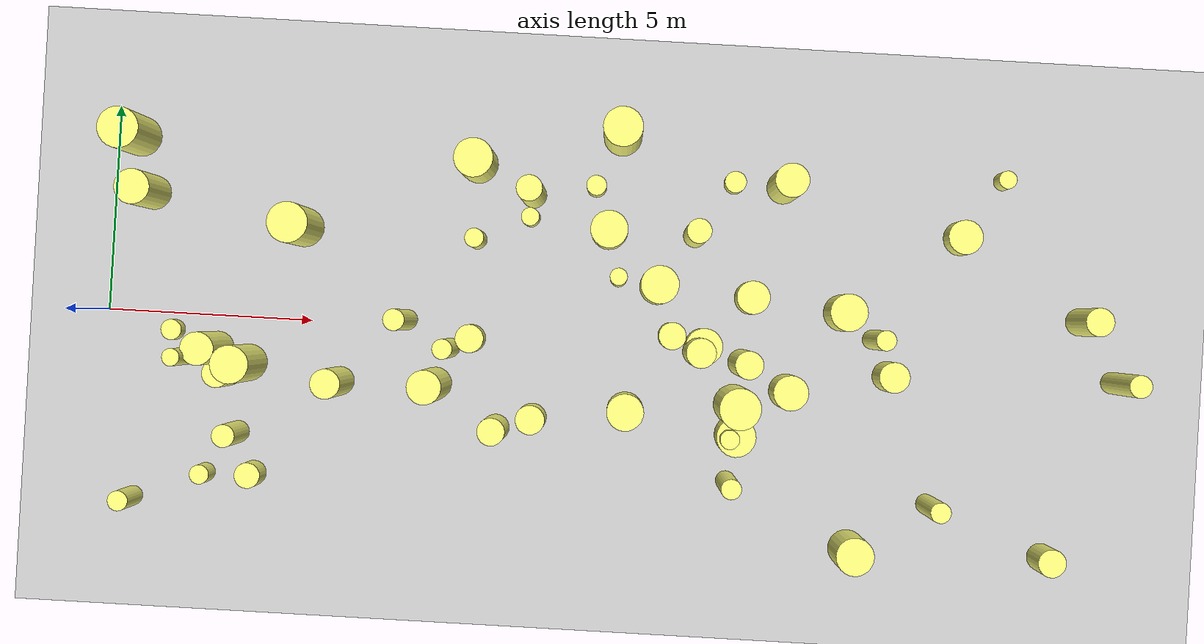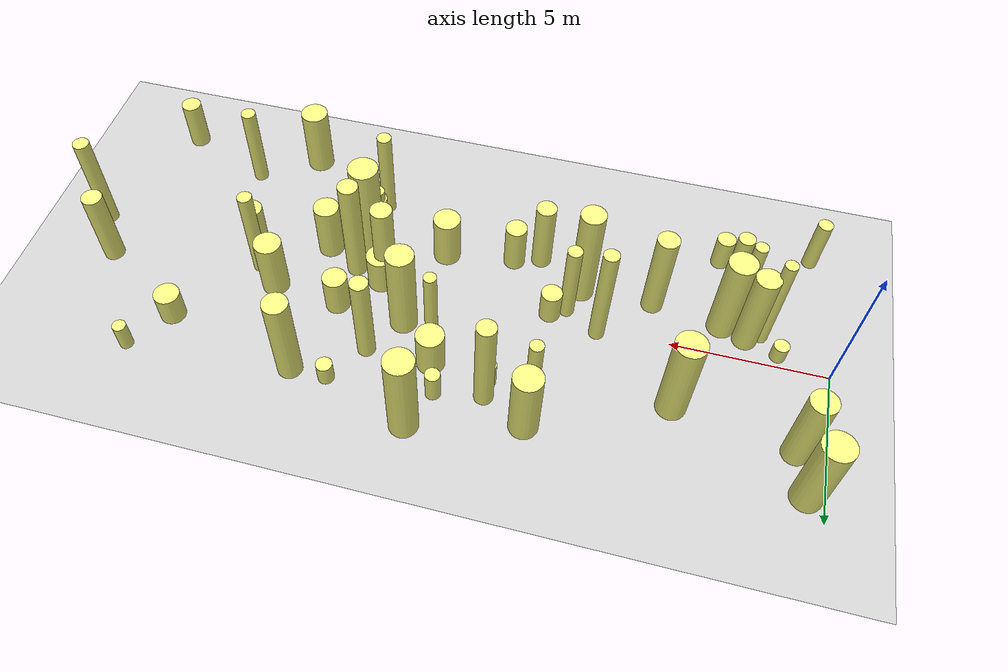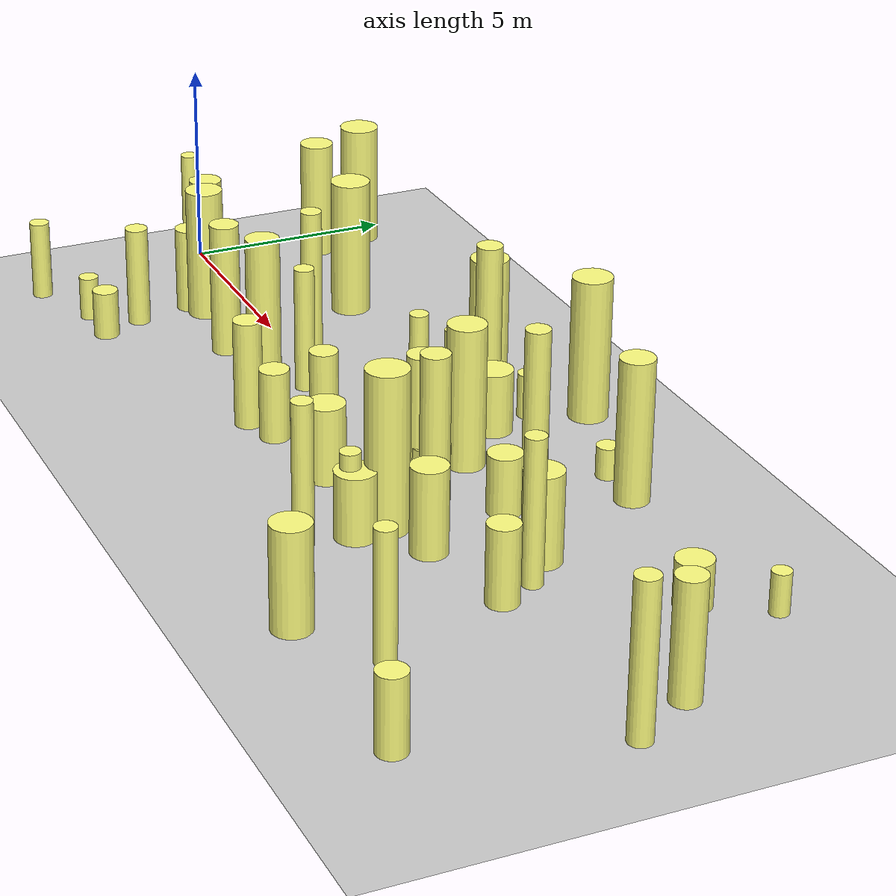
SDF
<sdf version="1.4">
 <world name="default">
  <include><uri>model://ground_plane</uri></include>
  <include><uri>model://sun</uri></include>
  <model name="forest">
   <static>true</static>
   <link name="cylinder2">
    <pose>12.17355871511667 2.617348784406312 0.7695251671588164 0 0 0</pose>
    <visual name="visual">
     <geometry>
      <cylinder><radius>0.45518470965374425</radius><length>1.5390503343176327</length></cylinder>
     </geometry>
     <material>
      <ambient>0.6 0.6 0.6 1</ambient>
      <diffuse>1 1 0.5 1</diffuse>
      <specular>0 0 0</specular>
      <emissive>0 0 0 1</emissive>
     </material>
    </visual>
    <collision name="collision">
     <geometry>
      <cylinder><radius>0.45518470965374425</radius><length>1.5390503343176327</length></cylinder>
     </geometry>
     <max_contacts>0</max_contacts>
    </collision>
   </link>
   <link name="cylinder4">
    <pose>0.5451021397248006 4.287327093307088 1.5533532316845653 0 0 0</pose>
    <visual name="visual">
     <geometry>
      <cylinder><radius>0.490695693746299</radius><length>3.1067064633691306</length></cylinder>
     </geometry>
     <material>
      <ambient>0.6 0.6 0.6 1</ambient>
      <diffuse>1 1 0.5 1</diffuse>
      <specular>0 0 0</specular>
      <emissive>0 0 0 1</emissive>
     </material>
    </visual>
    <collision name="collision">
     <geometry>
      <cylinder><radius>0.490695693746299</radius><length>3.1067064633691306</length></cylinder>
     </geometry>
     <max_contacts>0</max_contacts>
    </collision>
   </link>
   <link name="cylinder5">
    <pose>16.382690969800457 3.9296498198441725 1.7116452125746195 0 0 0</pose>
    <visual name="visual">
     <geometry>
      <cylinder><radius>0.40242538897291935</radius><length>3.423290425149239</length></cylinder>
     </geometry>
     <material>
      <ambient>0.6 0.6 0.6 1</ambient>
      <diffuse>1 1 0.5 1</diffuse>
      <specular>0 0 0</specular>
      <emissive>0 0 0 1</emissive>
     </material>
    </visual>
    <collision name="collision">
     <geometry>
      <cylinder><radius>0.40242538897291935</radius><length>3.423290425149239</length></cylinder>
     </geometry>
     <max_contacts>0</max_contacts>
    </collision>
   </link>
   <link name="cylinder6">
    <pose>0.8219950260331892 -4.550754108827136 0.9829498164001 0 0 0</pose>
    <visual name="visual">
     <geometry><cylinder><radius>0.2426356322146021</radius><length>1.9658996328002</length></cylinder></geometry>
     <material>
      <ambient>0.6 0.6 0.6 1</ambient>
      <diffuse>1 1 0.5 1</diffuse>
      <specular>0 0 0</specular>
      <emissive>0 0 0 1</emissive>
     </material>
    </visual>
    <collision name="collision">
     <geometry><cylinder><radius>0.2426356322146021</radius><length>1.9658996328002</length></cylinder></geometry>
     <max_contacts>0</max_contacts>
    </collision>
   </link>
   <link name="cylinder8">
    <pose>14.62403911125039 -0.0837147885713696 0.6771761001458225 0 0 0</pose>
    <visual name="visual">
     <geometry>
      <cylinder><radius>0.4475435085670516</radius><length>1.354352200291645</length></cylinder>
     </geometry>
     <material>
      <ambient>0.6 0.6 0.6 1</ambient>
      <diffuse>1 1 0.5 1</diffuse>
      <specular>0 0 0</specular>
      <emissive>0 0 0 1</emissive>
     </material>
    </visual>
    <collision name="collision">
     <geometry>
      <cylinder><radius>0.4475435085670516</radius><length>1.354352200291645</length></cylinder>
     </geometry>
     <max_contacts>0</max_contacts>
    </collision>
   </link>
   <link name="cylinder9">
    <pose>15.456999087174616 -1.4610693759416282 1.895710020783813 0 0 0</pose>
    <visual name="visual">
     <geometry>
      <cylinder><radius>0.48978377937480916</radius><length>3.791420041567626</length></cylinder>
     </geometry>
     <material>
      <ambient>0.6 0.6 0.6 1</ambient>
      <diffuse>1 1 0.5 1</diffuse>
      <specular>0 0 0</specular>
      <emissive>0 0 0 1</emissive>
     </material>
    </visual>
    <collision name="collision">
     <geometry>
      <cylinder><radius>0.48978377937480916</radius><length>3.791420041567626</length></cylinder>
     </geometry>
     <max_contacts>0</max_contacts>
    </collision>
   </link>
   <link name="cylinder11">
    <pose>8.878919479202033 4.079860358370427 1.3583442511263264 0 0 0</pose>
    <visual name="visual">
     <geometry>
      <cylinder><radius>0.4692062023084717</radius><length>2.716688502252653</length></cylinder>
     </geometry>
     <material>
      <ambient>0.6 0.6 0.6 1</ambient>
      <diffuse>1 1 0.5 1</diffuse>
      <specular>0 0 0</specular>
      <emissive>0 0 0 1</emissive>
     </material>
    </visual>
    <collision name="collision">
     <geometry>
      <cylinder><radius>0.4692062023084717</radius><length>2.716688502252653</length></cylinder>
     </geometry>
     <max_contacts>0</max_contacts>
    </collision>
   </link>
   <link name="cylinder12">
    <pose>23.857496988495512 1.0411982424140138 1.3827535337328685 0 0 0</pose>
    <visual name="visual">
     <geometry>
      <cylinder><radius>0.3394898045034613</radius><length>2.765507067465737</length></cylinder>
     </geometry>
     <material>
      <ambient>0.6 0.6 0.6 1</ambient>
      <diffuse>1 1 0.5 1</diffuse>
      <specular>0 0 0</specular>
      <emissive>0 0 0 1</emissive>
     </material>
    </visual>
    <collision name="collision">
     <geometry>
      <cylinder><radius>0.3394898045034613</radius><length>2.765507067465737</length></cylinder>
     </geometry>
     <max_contacts>0</max_contacts>
    </collision>
   </link>
   <link name="cylinder15">
    <pose>20.32863319259627 -3.6418209097069587 1.5089677672920634 0 0 0</pose>
    <visual name="visual">
     <geometry>
      <cylinder><radius>0.24420239186949372</radius><length>3.0179355345841268</length></cylinder>
     </geometry>
     <material>
      <ambient>0.6 0.6 0.6 1</ambient>
      <diffuse>1 1 0.5 1</diffuse>
      <specular>0 0 0</specular>
      <emissive>0 0 0 1</emissive>
     </material>
    </visual>
    <collision name="collision">
     <geometry>
      <cylinder><radius>0.24420239186949372</radius><length>3.0179355345841268</length></cylinder>
     </geometry>
     <max_contacts>0</max_contacts>
    </collision>
   </link>
   <link name="cylinder17">
    <pose>1.6294070108838419 -0.41041868526114555 0.3100170222696396 0 0 0</pose>
    <visual name="visual">
     <geometry>
      <cylinder><radius>0.25122345132233415</radius><length>0.6200340445392792</length></cylinder>
     </geometry>
     <material>
      <ambient>0.6 0.6 0.6 1</ambient>
      <diffuse>1 1 0.5 1</diffuse>
      <specular>0 0 0</specular>
      <emissive>0 0 0 1</emissive>
     </material>
    </visual>
    <collision name="collision">
     <geometry>
      <cylinder><radius>0.25122345132233415</radius><length>0.6200340445392792</length></cylinder>
     </geometry>
     <max_contacts>0</max_contacts>
    </collision>
   </link>
   <link name="cylinder18">
    <pose>18.440453964464126 -4.842324224014992 1.208034778838587 0 0 0</pose>
    <visual name="visual">
     <geometry>
      <cylinder><radius>0.4564822820893654</radius><length>2.416069557677174</length></cylinder>
     </geometry>
     <material>
      <ambient>0.6 0.6 0.6 1</ambient>
      <diffuse>1 1 0.5 1</diffuse>
      <specular>0 0 0</specular>
      <emissive>0 0 0 1</emissive>
     </material>
    </visual>
    <collision name="collision">
     <geometry>
      <cylinder><radius>0.4564822820893654</radius><length>2.416069557677174</length></cylinder>
     </geometry>
     <max_contacts>0</max_contacts>
    </collision>
   </link>
   <link name="cylinder23">
    <pose>18.78206764260443 0.32193979078497925 1.7154093065790716 0 0 0</pose>
    <visual name="visual">
     <geometry>
      <cylinder><radius>0.2384730306338957</radius><length>3.4308186131581433</length></cylinder>
     </geometry>
     <material>
      <ambient>0.6 0.6 0.6 1</ambient>
      <diffuse>1 1 0.5 1</diffuse>
      <specular>0 0 0</specular>
      <emissive>0 0 0 1</emissive>
     </material>
    </visual>
    <collision name="collision">
     <geometry>
      <cylinder><radius>0.2384730306338957</radius><length>3.4308186131581433</length></cylinder>
     </geometry>
     <max_contacts>0</max_contacts>
    </collision>
   </link>
   <link name="cylinder25">
    <pose>15.18038209791004 3.9632517767507522 0.3795768220333743 0 0 0</pose>
    <visual name="visual">
     <geometry>
      <cylinder><radius>0.2628267390274407</radius><length>0.7591536440667486</length></cylinder>
     </geometry>
     <material>
      <ambient>0.6 0.6 0.6 1</ambient>
      <diffuse>1 1 0.5 1</diffuse>
      <specular>0 0 0</specular>
      <emissive>0 0 0 1</emissive>
     </material>
    </visual>
    <collision name="collision">
     <geometry>
      <cylinder><radius>0.2628267390274407</radius><length>0.7591536440667486</length></cylinder>
     </geometry>
     <max_contacts>0</max_contacts>
    </collision>
   </link>
   <link name="cylinder30">
    <pose>12.466454563471714 1.4634949548378549 1.4268033545715695 0 0 0</pose>
    <visual name="visual">
     <geometry>
      <cylinder><radius>0.20881695404905304</radius><length>2.853606709143139</length></cylinder>
     </geometry>
     <material>
      <ambient>0.6 0.6 0.6 1</ambient>
      <diffuse>1 1 0.5 1</diffuse>
      <specular>0 0 0</specular>
      <emissive>0 0 0 1</emissive>
     </material>
    </visual>
    <collision name="collision">
     <geometry>
      <cylinder><radius>0.20881695404905304</radius><length>2.853606709143139</length></cylinder>
     </geometry>
     <max_contacts>0</max_contacts>
    </collision>
   </link>
   <link name="cylinder31">
    <pose>15.73953664509056 1.1715371120125715 0.7075776560475322 0 0 0</pose>
    <visual name="visual">
     <geometry>
      <cylinder><radius>0.4041041723390336</radius><length>1.4151553120950644</length></cylinder>
     </geometry>
     <material>
      <ambient>0.6 0.6 0.6 1</ambient>
      <diffuse>1 1 0.5 1</diffuse>
      <specular>0 0 0</specular>
      <emissive>0 0 0 1</emissive>
     </material>
    </visual>
    <collision name="collision">
     <geometry>
      <cylinder><radius>0.4041041723390336</radius><length>1.4151553120950644</length></cylinder>
     </geometry>
     <max_contacts>0</max_contacts>
    </collision>
   </link>
   <link name="cylinder33">
    <pose>19.200297235555233 -0.5566598012490411 0.9218042193405969 0 0 0</pose>
    <visual name="visual">
     <geometry>
      <cylinder><radius>0.3691931991757576</radius><length>1.8436084386811937</length></cylinder>
     </geometry>
     <material>
      <ambient>0.6 0.6 0.6 1</ambient>
      <diffuse>1 1 0.5 1</diffuse>
      <specular>0 0 0</specular>
      <emissive>0 0 0 1</emissive>
     </material>
    </visual>
    <collision name="collision">
     <geometry>
      <cylinder><radius>0.3691931991757576</radius><length>1.8436084386811937</length></cylinder>
     </geometry>
     <max_contacts>0</max_contacts>
    </collision>
   </link>
   <link name="cylinder34">
    <pose>24.732433368093957 -0.4078893535844852 1.7801295612060917 0 0 0</pose>
    <visual name="visual">
     <geometry>
      <cylinder><radius>0.2683265457778024</radius><length>3.5602591224121833</length></cylinder>
     </geometry>
     <material>
      <ambient>0.6 0.6 0.6 1</ambient>
      <diffuse>1 1 0.5 1</diffuse>
      <specular>0 0 0</specular>
      <emissive>0 0 0 1</emissive>
     </material>
    </visual>
    <collision name="collision">
     <geometry>
      <cylinder><radius>0.2683265457778024</radius><length>3.5602591224121833</length></cylinder>
     </geometry>
     <max_contacts>0</max_contacts>
    </collision>
   </link>
   <link name="cylinder35">
    <pose>2.2000767860501824 -1.0098003690205126 1.8597760949323536 0 0 0</pose>
    <visual name="visual">
     <geometry>
      <cylinder><radius>0.20629073970940587</radius><length>3.7195521898647073</length></cylinder>
     </geometry>
     <material>
      <ambient>0.6 0.6 0.6 1</ambient>
      <diffuse>1 1 0.5 1</diffuse>
      <specular>0 0 0</specular>
      <emissive>0 0 0 1</emissive>
     </material>
    </visual>
    <collision name="collision">
     <geometry>
      <cylinder><radius>0.20629073970940587</radius><length>3.7195521898647073</length></cylinder>
     </geometry>
     <max_contacts>0</max_contacts>
    </collision>
   </link>
   <link name="cylinder37">
    <pose>3.3268651791632635 -2.832557597410086 1.2444173037912731 0 0 0</pose>
    <visual name="visual">
     <geometry>
      <cylinder><radius>0.27344529421121677</radius><length>2.4888346075825463</length></cylinder>
     </geometry>
     <material>
      <ambient>0.6 0.6 0.6 1</ambient>
      <diffuse>1 1 0.5 1</diffuse>
      <specular>0 0 0</specular>
      <emissive>0 0 0 1</emissive>
     </material>
    </visual>
    <collision name="collision">
     <geometry>
      <cylinder><radius>0.27344529421121677</radius><length>2.4888346075825463</length></cylinder>
     </geometry>
     <max_contacts>0</max_contacts>
    </collision>
   </link>
   <link name="cylinder38">
    <pose>8.944952612057648 2.2216570837131364 0.8179286366309981 0 0 0</pose>
    <visual name="visual">
     <geometry>
      <cylinder><radius>0.23313235281679032</radius><length>1.6358572732619963</length></cylinder>
     </geometry>
     <material>
      <ambient>0.6 0.6 0.6 1</ambient>
      <diffuse>1 1 0.5 1</diffuse>
      <specular>0 0 0</specular>
      <emissive>0 0 0 1</emissive>
     </material>
    </visual>
    <collision name="collision">
     <geometry>
      <cylinder><radius>0.23313235281679032</radius><length>1.6358572732619963</length></cylinder>
     </geometry>
     <max_contacts>0</max_contacts>
    </collision>
   </link>
   <link name="cylinder39">
    <pose>15.506929338213197 -2.2096749711047825 0.7948044124810728 0 0 0</pose>
    <visual name="visual">
     <geometry>
      <cylinder><radius>0.4772542039277148</radius><length>1.5896088249621456</length></cylinder>
     </geometry>
     <material>
      <ambient>0.6 0.6 0.6 1</ambient>
      <diffuse>1 1 0.5 1</diffuse>
      <specular>0 0 0</specular>
      <emissive>0 0 0 1</emissive>
     </material>
    </visual>
    <collision name="collision">
     <geometry>
      <cylinder><radius>0.4772542039277148</radius><length>1.5896088249621456</length></cylinder>
     </geometry>
     <max_contacts>0</max_contacts>
    </collision>
   </link>
   <link name="cylinder41">
    <pose>14.489343630699338 -0.21784645105941003 1.731855769582506 0 0 0</pose>
    <visual name="visual">
     <geometry>
      <cylinder><radius>0.3526989026732716</radius><length>3.463711539165012</length></cylinder>
     </geometry>
     <material>
      <ambient>0.6 0.6 0.6 1</ambient>
      <diffuse>1 1 0.5 1</diffuse>
      <specular>0 0 0</specular>
      <emissive>0 0 0 1</emissive>
     </material>
    </visual>
    <collision name="collision">
     <geometry>
      <cylinder><radius>0.3526989026732716</radius><length>3.463711539165012</length></cylinder>
     </geometry>
     <max_contacts>0</max_contacts>
    </collision>
   </link>
   <link name="cylinder42">
    <pose>15.596232416822524 -0.42684086194105664 1.9987643856446065 0 0 0</pose>
    <visual name="visual">
     <geometry>
      <cylinder><radius>0.33143724376177514</radius><length>3.997528771289213</length></cylinder>
     </geometry>
     <material>
      <ambient>0.6 0.6 0.6 1</ambient>
      <diffuse>1 1 0.5 1</diffuse>
      <specular>0 0 0</specular>
      <emissive>0 0 0 1</emissive>
     </material>
    </visual>
    <collision name="collision">
     <geometry>
      <cylinder><radius>0.33143724376177514</radius><length>3.997528771289213</length></cylinder>
     </geometry>
     <max_contacts>0</max_contacts>
    </collision>
   </link>
   <link name="cylinder46">
    <pose>13.439167088054063 1.3241548024242134 1.7184270815577272 0 0 0</pose>
    <visual name="visual">
     <geometry>
      <cylinder><radius>0.4499449676625704</radius><length>3.4368541631154543</length></cylinder>
     </geometry>
     <material>
      <ambient>0.6 0.6 0.6 1</ambient>
      <diffuse>1 1 0.5 1</diffuse>
      <specular>0 0 0</specular>
      <emissive>0 0 0 1</emissive>
     </material>
    </visual>
    <collision name="collision">
     <geometry>
      <cylinder><radius>0.4499449676625704</radius><length>3.4368541631154543</length></cylinder>
     </geometry>
     <max_contacts>0</max_contacts>
    </collision>
   </link>
   <link name="cylinder49">
    <pose>20.81168345473008 2.928617343516886 0.54699325148576 0 0 0</pose>
    <visual name="visual">
     <geometry>
      <cylinder><radius>0.41962012148468575</radius><length>1.09398650297152</length></cylinder>
     </geometry>
     <material>
      <ambient>0.6 0.6 0.6 1</ambient>
      <diffuse>1 1 0.5 1</diffuse>
      <specular>0 0 0</specular>
      <emissive>0 0 0 1</emissive>
     </material>
    </visual>
    <collision name="collision">
     <geometry>
      <cylinder><radius>0.41962012148468575</radius><length>1.09398650297152</length></cylinder>
     </geometry>
     <max_contacts>0</max_contacts>
    </collision>
   </link>
   <link name="cylinder50">
    <pose>13.836993050028077 0.13474181616119552 0.8172512902104683 0 0 0</pose>
    <visual name="visual">
     <geometry>
      <cylinder><radius>0.330910202041312</radius><length>1.6345025804209365</length></cylinder>
     </geometry>
     <material>
      <ambient>0.6 0.6 0.6 1</ambient>
      <diffuse>1 1 0.5 1</diffuse>
      <specular>0 0 0</specular>
      <emissive>0 0 0 1</emissive>
     </material>
    </visual>
    <collision name="collision">
     <geometry>
      <cylinder><radius>0.330910202041312</radius><length>1.6345025804209365</length></cylinder>
     </geometry>
     <max_contacts>0</max_contacts>
    </collision>
   </link>
   <link name="cylinder52">
    <pose>2.7045159463375086 -0.787005885120589 1.6008697981100701 0 0 0</pose>
    <visual name="visual">
     <geometry>
      <cylinder><radius>0.39509654069503153</radius><length>3.2017395962201403</length></cylinder>
     </geometry>
     <material>
      <ambient>0.6 0.6 0.6 1</ambient>
      <diffuse>1 1 0.5 1</diffuse>
      <specular>0 0 0</specular>
      <emissive>0 0 0 1</emissive>
     </material>
    </visual>
    <collision name="collision">
     <geometry>
      <cylinder><radius>0.39509654069503153</radius><length>3.2017395962201403</length></cylinder>
     </geometry>
     <max_contacts>0</max_contacts>
    </collision>
   </link>
   <link name="cylinder53">
    <pose>0.927405932077459 2.926455855577661 1.492132570759678 0 0 0</pose>
    <visual name="visual">
     <geometry>
      <cylinder><radius>0.4193248782191068</radius><length>2.984265141519356</length></cylinder>
     </geometry>
     <material>
      <ambient>0.6 0.6 0.6 1</ambient>
      <diffuse>1 1 0.5 1</diffuse>
      <specular>0 0 0</specular>
      <emissive>0 0 0 1</emissive>
     </material>
    </visual>
    <collision name="collision">
     <geometry>
      <cylinder><radius>0.4193248782191068</radius><length>2.984265141519356</length></cylinder>
     </geometry>
     <max_contacts>0</max_contacts>
    </collision>
   </link>
   <link name="cylinder55">
    <pose>12.804423549938008 -1.7562708476605726 0.921033869204892 0 0 0</pose>
    <visual name="visual">
     <geometry>
      <cylinder><radius>0.4482198343066287</radius><length>1.842067738409784</length></cylinder>
     </geometry>
     <material>
      <ambient>0.6 0.6 0.6 1</ambient>
      <diffuse>1 1 0.5 1</diffuse>
      <specular>0 0 0</specular>
      <emissive>0 0 0 1</emissive>
     </material>
    </visual>
    <collision name="collision">
     <geometry>
      <cylinder><radius>0.4482198343066287</radius><length>1.842067738409784</length></cylinder>
     </geometry>
     <max_contacts>0</max_contacts>
    </collision>
   </link>
   <link name="cylinder57">
    <pose>3.4896654946446297 -1.115549225749625 1.6420080818517513 0 0 0</pose>
    <visual name="visual">
     <geometry>
      <cylinder><radius>0.4537127796081549</radius><length>3.2840161637035026</length></cylinder>
     </geometry>
     <material>
      <ambient>0.6 0.6 0.6 1</ambient>
      <diffuse>1 1 0.5 1</diffuse>
      <specular>0 0 0</specular>
      <emissive>0 0 0 1</emissive>
     </material>
    </visual>
    <collision name="collision">
     <geometry>
      <cylinder><radius>0.4537127796081549</radius><length>3.2840161637035026</length></cylinder>
     </geometry>
     <max_contacts>0</max_contacts>
    </collision>
   </link>
   <link name="cylinder60">
    <pose>10.276058038939958 3.386741249278746 1.8502091323024195 0 0 0</pose>
    <visual name="visual">
     <geometry><cylinder><radius>0.308947790154439</radius><length>3.700418264604839</length></cylinder></geometry>
     <material>
      <ambient>0.6 0.6 0.6 1</ambient>
      <diffuse>1 1 0.5 1</diffuse>
      <specular>0 0 0</specular>
      <emissive>0 0 0 1</emissive>
     </material>
    </visual>
    <collision name="collision">
     <geometry><cylinder><radius>0.308947790154439</radius><length>3.700418264604839</length></cylinder></geometry>
     <max_contacts>0</max_contacts>
    </collision>
   </link>
   <link name="cylinder62">
    <pose>7.3290191008465655 0.15591134739980284 1.9796183557118858 0 0 0</pose>
    <visual name="visual">
     <geometry>
      <cylinder><radius>0.2520362077839969</radius><length>3.9592367114237716</length></cylinder>
     </geometry>
     <material>
      <ambient>0.6 0.6 0.6 1</ambient>
      <diffuse>1 1 0.5 1</diffuse>
      <specular>0 0 0</specular>
      <emissive>0 0 0 1</emissive>
     </material>
    </visual>
    <collision name="collision">
     <geometry>
      <cylinder><radius>0.2520362077839969</radius><length>3.9592367114237716</length></cylinder>
     </geometry>
     <max_contacts>0</max_contacts>
    </collision>
   </link>
   <link name="cylinder63">
    <pose>11.805849253504604 3.6740827512813663 0.5412694871013315 0 0 0</pose>
    <visual name="visual">
     <geometry>
      <cylinder><radius>0.24532652148197925</radius><length>1.082538974202663</length></cylinder>
     </geometry>
     <material>
      <ambient>0.6 0.6 0.6 1</ambient>
      <diffuse>1 1 0.5 1</diffuse>
      <specular>0 0 0</specular>
      <emissive>0 0 0 1</emissive>
     </material>
    </visual>
    <collision name="collision">
     <geometry>
      <cylinder><radius>0.24532652148197925</radius><length>1.082538974202663</length></cylinder>
     </geometry>
     <max_contacts>0</max_contacts>
    </collision>
   </link>
   <link name="cylinder64">
    <pose>15.33967509791475 -2.2590286480247466 0.9836531245159008 0 0 0</pose>
    <visual name="visual">
     <geometry>
      <cylinder><radius>0.2349544484722807</radius><length>1.9673062490318016</length></cylinder>
     </geometry>
     <material>
      <ambient>0.6 0.6 0.6 1</ambient>
      <diffuse>1 1 0.5 1</diffuse>
      <specular>0 0 0</specular>
      <emissive>0 0 0 1</emissive>
     </material>
    </visual>
    <collision name="collision">
     <geometry>
      <cylinder><radius>0.2349544484722807</radius><length>1.9673062490318016</length></cylinder>
     </geometry>
     <max_contacts>0</max_contacts>
    </collision>
   </link>
   <link name="cylinder67">
    <pose>12.374200654205367 4.950567793063341 1.7494851448672644 0 0 0</pose>
    <visual name="visual">
     <geometry>
      <cylinder><radius>0.4720444157505522</radius><length>3.4989702897345287</length></cylinder>
     </geometry>
     <material>
      <ambient>0.6 0.6 0.6 1</ambient>
      <diffuse>1 1 0.5 1</diffuse>
      <specular>0 0 0</specular>
      <emissive>0 0 0 1</emissive>
     </material>
    </visual>
    <collision name="collision">
     <geometry>
      <cylinder><radius>0.4720444157505522</radius><length>3.4989702897345287</length></cylinder>
     </geometry>
     <max_contacts>0</max_contacts>
    </collision>
   </link>
   <link name="cylinder70">
    <pose>14.285695051369999 2.6257159518421354 1.7179923736178238 0 0 0</pose>
    <visual name="visual">
     <geometry>
      <cylinder><radius>0.2931016993940348</radius><length>3.4359847472356475</length></cylinder>
     </geometry>
     <material>
      <ambient>0.6 0.6 0.6 1</ambient>
      <diffuse>1 1 0.5 1</diffuse>
      <specular>0 0 0</specular>
      <emissive>0 0 0 1</emissive>
     </material>
    </visual>
    <collision name="collision">
     <geometry>
      <cylinder><radius>0.2931016993940348</radius><length>3.4359847472356475</length></cylinder>
     </geometry>
     <max_contacts>0</max_contacts>
    </collision>
   </link>
   <link name="cylinder71">
    <pose>8.102474956606308 -1.3725759264189632 1.914699165471288 0 0 0</pose>
    <visual name="visual">
     <geometry>
      <cylinder><radius>0.40486415962533734</radius><length>3.829398330942576</length></cylinder>
     </geometry>
     <material>
      <ambient>0.6 0.6 0.6 1</ambient>
      <diffuse>1 1 0.5 1</diffuse>
      <specular>0 0 0</specular>
      <emissive>0 0 0 1</emissive>
     </material>
    </visual>
    <collision name="collision">
     <geometry>
      <cylinder><radius>0.40486415962533734</radius><length>3.829398330942576</length></cylinder>
     </geometry>
     <max_contacts>0</max_contacts>
    </collision>
   </link>
   <link name="cylinder73">
    <pose>17.996794814463108 0.9357022721209054 1.0757930091415022 0 0 0</pose>
    <visual name="visual">
     <geometry>
      <cylinder><radius>0.450443257757482</radius><length>2.1515860182830044</length></cylinder>
     </geometry>
     <material>
      <ambient>0.6 0.6 0.6 1</ambient>
      <diffuse>1 1 0.5 1</diffuse>
      <specular>0 0 0</specular>
      <emissive>0 0 0 1</emissive>
     </material>
    </visual>
    <collision name="collision">
     <geometry>
      <cylinder><radius>0.450443257757482</radius><length>2.1515860182830044</length></cylinder>
     </geometry>
     <max_contacts>0</max_contacts>
    </collision>
   </link>
   <link name="cylinder74">
    <pose>8.421307360547345 -0.4742759358230506 1.5261590711259467 0 0 0</pose>
    <visual name="visual">
     <geometry>
      <cylinder><radius>0.23880693193115116</radius><length>3.0523181422518935</length></cylinder>
     </geometry>
     <material>
      <ambient>0.6 0.6 0.6 1</ambient>
      <diffuse>1 1 0.5 1</diffuse>
      <specular>0 0 0</specular>
      <emissive>0 0 0 1</emissive>
     </material>
    </visual>
    <collision name="collision">
     <geometry>
      <cylinder><radius>0.23880693193115116</radius><length>3.0523181422518935</length></cylinder>
     </geometry>
     <max_contacts>0</max_contacts>
    </collision>
   </link>
   <link name="cylinder75">
    <pose>10.238442254037011 2.8288405427803287 0.48468426745013254 0 0 0</pose>
    <visual name="visual">
     <geometry>
      <cylinder><radius>0.22138871043756053</radius><length>0.9693685349002651</length></cylinder>
     </geometry>
     <material>
      <ambient>0.6 0.6 0.6 1</ambient>
      <diffuse>1 1 0.5 1</diffuse>
      <specular>0 0 0</specular>
      <emissive>0 0 0 1</emissive>
     </material>
    </visual>
    <collision name="collision">
     <geometry>
      <cylinder><radius>0.22138871043756053</radius><length>0.9693685349002651</length></cylinder>
     </geometry>
     <max_contacts>0</max_contacts>
    </collision>
   </link>
   <link name="cylinder76">
    <pose>16.728705671362768 -1.0626794870439502 1.0294470993203353 0 0 0</pose>
    <visual name="visual">
     <geometry>
      <cylinder><radius>0.42319690717613967</radius><length>2.0588941986406706</length></cylinder>
     </geometry>
     <material>
      <ambient>0.6 0.6 0.6 1</ambient>
      <diffuse>1 1 0.5 1</diffuse>
      <specular>0 0 0</specular>
      <emissive>0 0 0 1</emissive>
     </material>
    </visual>
    <collision name="collision">
     <geometry>
      <cylinder><radius>0.42319690717613967</radius><length>2.0588941986406706</length></cylinder>
     </geometry>
     <max_contacts>0</max_contacts>
    </collision>
   </link>
   <link name="cylinder78">
    <pose>3.760864862382885 -3.825950771792148 0.596070022942107 0 0 0</pose>
    <visual name="visual">
     <geometry>
      <cylinder><radius>0.3098569331466577</radius><length>1.192140045884214</length></cylinder>
     </geometry>
     <material>
      <ambient>0.6 0.6 0.6 1</ambient>
      <diffuse>1 1 0.5 1</diffuse>
      <specular>0 0 0</specular>
      <emissive>0 0 0 1</emissive>
     </material>
    </visual>
    <collision name="collision">
     <geometry>
      <cylinder><radius>0.3098569331466577</radius><length>1.192140045884214</length></cylinder>
     </geometry>
     <max_contacts>0</max_contacts>
    </collision>
   </link>
   <link name="cylinder80">
    <pose>8.934186380904912 -0.2113892503787964 0.5618014994605595 0 0 0</pose>
    <visual name="visual">
     <geometry>
      <cylinder><radius>0.3452127710942861</radius><length>1.123602998921119</length></cylinder>
     </geometry>
     <material>
      <ambient>0.6 0.6 0.6 1</ambient>
      <diffuse>1 1 0.5 1</diffuse>
      <specular>0 0 0</specular>
      <emissive>0 0 0 1</emissive>
     </material>
    </visual>
    <collision name="collision">
     <geometry>
      <cylinder><radius>0.3452127710942861</radius><length>1.123602998921119</length></cylinder>
     </geometry>
     <max_contacts>0</max_contacts>
    </collision>
   </link>
   <link name="cylinder84">
    <pose>4.6731565741664305 2.2821458728762316 1.7059600572288973 0 0 0</pose>
    <visual name="visual">
     <geometry>
      <cylinder><radius>0.48214056747542455</radius><length>3.4119201144577946</length></cylinder>
     </geometry>
     <material>
      <ambient>0.6 0.6 0.6 1</ambient>
      <diffuse>1 1 0.5 1</diffuse>
      <specular>0 0 0</specular>
      <emissive>0 0 0 1</emissive>
     </material>
    </visual>
    <collision name="collision">
     <geometry>
      <cylinder><radius>0.48214056747542455</radius><length>3.4119201144577946</length></cylinder>
     </geometry>
     <max_contacts>0</max_contacts>
    </collision>
   </link>
   <link name="cylinder86">
    <pose>2.5848543922610148 -3.8726700416123174 0.5404734148402804 0 0 0</pose>
    <visual name="visual">
     <geometry>
      <cylinder><radius>0.23458339645786447</radius><length>1.0809468296805609</length></cylinder>
     </geometry>
     <material>
      <ambient>0.6 0.6 0.6 1</ambient>
      <diffuse>1 1 0.5 1</diffuse>
      <specular>0 0 0</specular>
      <emissive>0 0 0 1</emissive>
     </material>
    </visual>
    <collision name="collision">
     <geometry>
      <cylinder><radius>0.23458339645786447</radius><length>1.0809468296805609</length></cylinder>
     </geometry>
     <max_contacts>0</max_contacts>
    </collision>
   </link>
   <link name="cylinder90">
    <pose>15.370857238623344 -3.347346096202628 1.6862833685156395 0 0 0</pose>
    <visual name="visual">
     <geometry>
      <cylinder><radius>0.24139184014318174</radius><length>3.372566737031279</length></cylinder>
     </geometry>
     <material>
      <ambient>0.6 0.6 0.6 1</ambient>
      <diffuse>1 1 0.5 1</diffuse>
      <specular>0 0 0</specular>
      <emissive>0 0 0 1</emissive>
     </material>
    </visual>
    <collision name="collision">
     <geometry>
      <cylinder><radius>0.24139184014318174</radius><length>3.372566737031279</length></cylinder>
     </geometry>
     <max_contacts>0</max_contacts>
    </collision>
   </link>
   <link name="cylinder91">
    <pose>10.531074539369314 -2.0735165864687066 0.8576951242795439 0 0 0</pose>
    <visual name="visual">
     <geometry>
      <cylinder><radius>0.354072092205517</radius><length>1.7153902485590877</length></cylinder>
     </geometry>
     <material>
      <ambient>0.6 0.6 0.6 1</ambient>
      <diffuse>1 1 0.5 1</diffuse>
      <specular>0 0 0</specular>
      <emissive>0 0 0 1</emissive>
     </material>
    </visual>
    <collision name="collision">
     <geometry>
      <cylinder><radius>0.354072092205517</radius><length>1.7153902485590877</length></cylinder>
     </geometry>
     <max_contacts>0</max_contacts>
    </collision>
   </link>
   <link name="cylinder92">
    <pose>5.755119576777091 -1.4405261103836828 1.6477387353091622 0 0 0</pose>
    <visual name="visual">
     <geometry>
      <cylinder><radius>0.3542130223256539</radius><length>3.2954774706183243</length></cylinder>
     </geometry>
     <material>
      <ambient>0.6 0.6 0.6 1</ambient>
      <diffuse>1 1 0.5 1</diffuse>
      <specular>0 0 0</specular>
      <emissive>0 0 0 1</emissive>
     </material>
    </visual>
    <collision name="collision">
     <geometry>
      <cylinder><radius>0.3542130223256539</radius><length>3.2954774706183243</length></cylinder>
     </geometry>
     <max_contacts>0</max_contacts>
    </collision>
   </link>
   <link name="cylinder93">
    <pose>3.0185659727154643 -1.3745135829106472 1.0649996085678515 0 0 0</pose>
    <visual name="visual">
     <geometry>
      <cylinder><radius>0.33794572002657997</radius><length>2.129999217135703</length></cylinder>
     </geometry>
     <material>
      <ambient>0.6 0.6 0.6 1</ambient>
      <diffuse>1 1 0.5 1</diffuse>
      <specular>0 0 0</specular>
      <emissive>0 0 0 1</emissive>
     </material>
    </visual>
    <collision name="collision">
     <geometry>
      <cylinder><radius>0.33794572002657997</radius><length>2.129999217135703</length></cylinder>
     </geometry>
     <max_contacts>0</max_contacts>
    </collision>
   </link>
   <link name="cylinder95">
    <pose>23.227416252211164 -4.7862364397277215 0.8836699985693988 0 0 0</pose>
    <visual name="visual">
     <geometry>
      <cylinder><radius>0.3376083149370026</radius><length>1.7673399971387975</length></cylinder>
     </geometry>
     <material>
      <ambient>0.6 0.6 0.6 1</ambient>
      <diffuse>1 1 0.5 1</diffuse>
      <specular>0 0 0</specular>
      <emissive>0 0 0 1</emissive>
     </material>
    </visual>
    <collision name="collision">
     <geometry>
      <cylinder><radius>0.3376083149370026</radius><length>1.7673399971387975</length></cylinder>
     </geometry>
     <max_contacts>0</max_contacts>
    </collision>
   </link>
   <link name="cylinder97">
    <pose>21.766947457187783 4.381684906808486 0.49133382379181334 0 0 0</pose>
    <visual name="visual">
     <geometry>
      <cylinder><radius>0.21933992948116735</radius><length>0.9826676475836267</length></cylinder>
     </geometry>
     <material>
      <ambient>0.6 0.6 0.6 1</ambient>
      <diffuse>1 1 0.5 1</diffuse>
      <specular>0 0 0</specular>
      <emissive>0 0 0 1</emissive>
     </material>
    </visual>
    <collision name="collision">
     <geometry>
      <cylinder><radius>0.21933992948116735</radius><length>0.9826676475836267</length></cylinder>
     </geometry>
     <max_contacts>0</max_contacts>
    </collision>
   </link>
   <link name="cylinder99">
    <pose>9.653500461757943 -2.3684077854451946 1.3030453657889378 0 0 0</pose>
    <visual name="visual">
     <geometry>
      <cylinder><radius>0.33125090246110134</radius><length>2.6060907315778756</length></cylinder>
     </geometry>
     <material>
      <ambient>0.6 0.6 0.6 1</ambient>
      <diffuse>1 1 0.5 1</diffuse>
      <specular>0 0 0</specular>
      <emissive>0 0 0 1</emissive>
     </material>
    </visual>
    <collision name="collision">
     <geometry>
      <cylinder><radius>0.33125090246110134</radius><length>2.6060907315778756</length></cylinder>
     </geometry>
     <max_contacts>0</max_contacts>
    </collision>
   </link>
  </model>
 </world>
</sdf>
